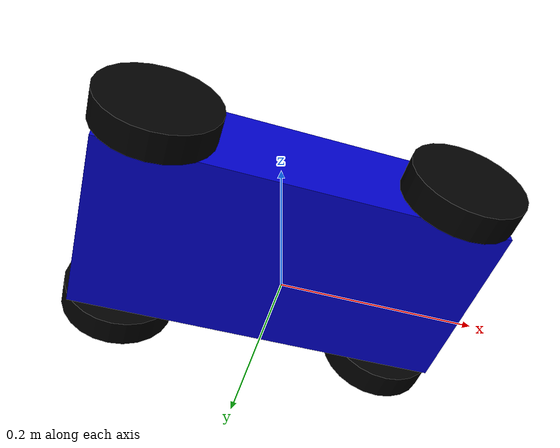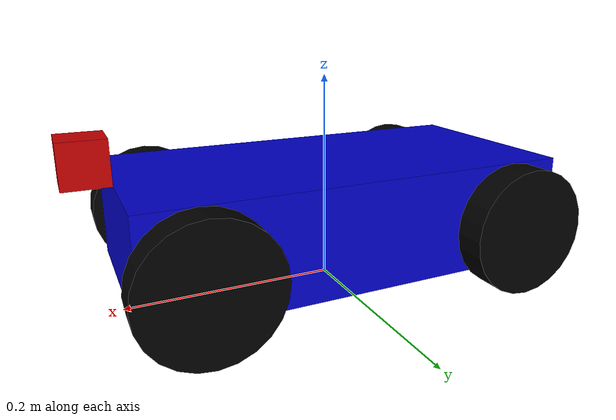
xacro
<?xml version="1.0"?>
<robot xmlns:xacro="http://ros.org/wiki/xacro" name="diff_car">
  <!-- 材质定义 -->
  <material name="blue">
    <color rgba="0 0 0.8 1"/>
  </material>
  <material name="black">
    <color rgba="0 0 0 1"/>
  </material>
  <material name="red">
    <color rgba="0.8 0 0 1"/>
  </material>

  <!-- 车体参数 -->
  <xacro:property name="base_width" value="0.2"/>
  <xacro:property name="base_length" value="0.4"/>
  <xacro:property name="base_height" value="0.1"/>
  <xacro:property name="wheel_radius" value="0.06"/>
  <xacro:property name="wheel_width" value="0.03"/>
  <xacro:property name="ground_clearance" value="0.02"/>

  <!-- 底盘 base_link -->
  <link name="base_link">
    <visual>
      <origin xyz="0 0 ${ground_clearance + base_height/2}" rpy="0 0 0"/>
      <geometry>
        <box size="${base_length} ${base_width} ${base_height}"/>
      </geometry>
      <material name="blue"/>
    </visual>
    <collision>
      <origin xyz="0 0 ${ground_clearance + base_height/2}" rpy="0 0 0"/>
      <geometry>
        <box size="${base_length} ${base_width} ${base_height}"/>
      </geometry>
    </collision>
    <inertial>
      <origin xyz="0 0 ${ground_clearance + base_height/2}"/>
      <mass value="2.0"/>
      <inertia ixx="0.0083" iyy="0.0283" izz="0.033" ixy="0.0" ixz="0.0" iyz="0.0"/>
    </inertial>
  </link>

  <gazebo reference="base_link">
    <selfCollide>false</selfCollide>
    <damping>
      <linear>0.1</linear>
      <angular>0.1</angular>
    </damping>
  </gazebo>

  <!-- 左后轮（驱动轮） -->
  <joint name="left_rear_wheel_joint" type="continuous">
    <parent link="base_link"/>
    <child link="left_rear_wheel"/>
    <origin xyz="${-base_length/2 + 0.05} ${base_width/2 + wheel_width/2} ${wheel_radius}" rpy="0 0 0"/>
    <axis xyz="0 1 0"/>
    <limit effort="30" velocity="10"/>
  </joint>
  <link name="left_rear_wheel">
    <visual>
      <origin xyz="0 0 0" rpy="1.5708 0 0"/>
      <geometry>
        <cylinder radius="${wheel_radius}" length="${wheel_width}"/>
      </geometry>
      <material name="black"/>
    </visual>
    <collision>
      <origin xyz="0 0 0" rpy="1.5708 0 0"/>
      <geometry>
        <cylinder radius="${wheel_radius}" length="${wheel_width}"/>
      </geometry>
    </collision>
    <inertial>
      <mass value="0.2"/>
      <inertia ixx="0.0002175" iyy="0.00036" izz="0.0002175" ixy="0.0" ixz="0.0" iyz="0.0"/>
    </inertial>
  </link>

  <!-- 右后轮（驱动轮） -->
  <joint name="right_rear_wheel_joint" type="continuous">
    <parent link="base_link"/>
    <child link="right_rear_wheel"/>
    <origin xyz="${-base_length/2 + 0.05} ${-base_width/2 - wheel_width/2} ${wheel_radius}" rpy="0 0 0"/>
    <axis xyz="0 1 0"/>
    <limit effort="30" velocity="10"/>
  </joint>
  <link name="right_rear_wheel">
    <visual>
      <origin xyz="0 0 0" rpy="1.5708 0 0"/>
      <geometry>
        <cylinder radius="${wheel_radius}" length="${wheel_width}"/>
      </geometry>
      <material name="black"/>
    </visual>
    <collision>
      <origin xyz="0 0 0" rpy="1.5708 0 0"/>
      <geometry>
        <cylinder radius="${wheel_radius}" length="${wheel_width}"/>
      </geometry>
    </collision>
    <inertial>
      <mass value="0.2"/>
      <inertia ixx="0.0002175" iyy="0.00036" izz="0.0002175" ixy="0.0" ixz="0.0" iyz="0.0"/>
    </inertial>
  </link>

  <!-- 左前轮：随动轮 continuous 自由旋转！！【修复重点】 -->
  <link name="left_front_wheel">
    <visual>
      <origin xyz="0 0 0" rpy="1.5708 0 0"/>
      <geometry>
        <cylinder radius="${wheel_radius}" length="${wheel_width}"/>
      </geometry>
      <material name="black"/>
    </visual>
    <collision>
      <origin xyz="0 0 0" rpy="1.5708 0 0"/>
      <geometry>
        <cylinder radius="${wheel_radius}" length="${wheel_width}"/>
      </geometry>
    </collision>
    <inertial>
      <mass value="0.1"/>
      <inertia ixx="0.00011" iyy="0.00018" izz="0.00011" ixy="0.0" ixz="0.0" iyz="0.0"/>
    </inertial>
  </link>
  <joint name="left_front_wheel_joint" type="continuous">
    <parent link="base_link"/>
    <child link="left_front_wheel"/>
    <origin xyz="${base_length/2 - 0.05} ${base_width/2 + wheel_width/2} ${wheel_radius}" rpy="0 0 0"/>
    <axis xyz="0 1 0"/>
    <limit effort="0" velocity="10"/>
  </joint>

  <!-- 右前轮：随动轮 continuous 自由旋转！！【修复重点】 -->
  <link name="right_front_wheel">
    <visual>
      <origin xyz="0 0 0" rpy="1.5708 0 0"/>
      <geometry>
        <cylinder radius="${wheel_radius}" length="${wheel_width}"/>
      </geometry>
      <material name="black"/>
    </visual>
    <collision>
      <origin xyz="0 0 0" rpy="1.5708 0 0"/>
      <geometry>
        <cylinder radius="${wheel_radius}" length="${wheel_width}"/>
      </geometry>
    </collision>
    <inertial>
      <mass value="0.1"/>
      <inertia ixx="0.00011" iyy="0.00018" izz="0.00011" ixy="0.0" ixz="0.0" iyz="0.0"/>
    </inertial>
  </link>
  <joint name="right_front_wheel_joint" type="continuous">
    <parent link="base_link"/>
    <child link="right_front_wheel"/>
    <origin xyz="${base_length/2 - 0.05} ${-base_width/2 - wheel_width/2} ${wheel_radius}" rpy="0 0 0"/>
    <axis xyz="0 1 0"/>
    <limit effort="0" velocity="10"/>
  </joint>

  <!-- 前相机 -->
  <joint name="front_camera_joint" type="fixed">
    <parent link="base_link"/>
    <child link="front_camera"/>
    <origin xyz="${base_length/2 + 0.02} 0 ${ground_clearance + base_height + 0.02}" rpy="0 0 0"/>
  </joint>
  <link name="front_camera">
    <visual>
      <geometry>
        <box size="0.04 0.04 0.04"/>
      </geometry>
      <material name="red"/>
    </visual>
    <!-- 相机去掉collision，防止撞墙干扰 -->
    <inertial>
      <mass value="0.05"/>
      <inertia ixx="0.00001" iyy="0.00001" izz="0.00001" ixy="0.0" ixz="0.0" iyz="0.0"/>
    </inertial>
  </link>

  <!-- 车轮摩擦接触参数 -->
  <gazebo reference="left_rear_wheel">
    <mu1>0.7</mu1>
    <mu2>0.1</mu2>
    <fdir1>1 0 0</fdir1>
    <kp>800000.0</kp>
    <kd>1.0</kd>
    <minDepth>0.001</minDepth>
  </gazebo>
  <gazebo reference="right_rear_wheel">
    <mu1>0.7</mu1>
    <mu2>0.1</mu2>
    <fdir1>1 0 0</fdir1>
    <kp>800000.0</kp>
    <kd>1.0</kd>
    <minDepth>0.001</minDepth>
  </gazebo>

  <gazebo reference="left_front_wheel">
    <mu1>0.4</mu1>
    <mu2>0.1</mu2>
    <fdir1>1 0 0</fdir1>
    <kp>800000.0</kp>
    <kd>1.0</kd>
    <minDepth>0.001</minDepth>
  </gazebo>
  <gazebo reference="right_front_wheel">
    <mu1>0.4</mu1>
    <mu2>0.1</mu2>
    <fdir1>1 0 0</fdir1>
    <kp>800000.0</kp>
    <kd>1.0</kd>
    <minDepth>0.001</minDepth>
  </gazebo>

  <!-- Gazebo差速驱动插件，轮距参数化，和模型匹配【修复重点】 -->
  <gazebo>
    <plugin name="diff_drive" filename="libgazebo_ros_diff_drive.so">
      <leftJoint>left_rear_wheel_joint</leftJoint>
      <rightJoint>right_rear_wheel_joint</rightJoint>

      <wheelDiameter>${2*wheel_radius}</wheelDiameter>
      <wheelSeparation>${base_width + wheel_width}</wheelSeparation>

      <wheelTorque>30</wheelTorque>
      <wheelAcceleration>10.0</wheelAcceleration>

      <updateRate>100</updateRate>
      <odometryTopic>/odom</odometryTopic>
      <odometryFrame>odom</odometryFrame>
      <robotBaseFrame>base_link</robotBaseFrame>
      <legacyMode>false</legacyMode>
      <alwaysOn>true</alwaysOn>
      <publishWheelJointState>true</publishWheelJointState>
    </plugin>
  </gazebo>

  <!-- Gazebo相机插件 -->
  <gazebo reference="front_camera">
    <sensor type="camera" name="front_camera_sensor">
      <update_rate>30</update_rate>
      <camera>
        <horizontal_fov>1.047</horizontal_fov>
        <image>
          <width>640</width>
          <height>480</height>
          <format>R8G8B8</format>
        </image>
        <clip>
          <near>0.02</near>
          <far>30</far>
        </clip>
      </camera>
      <always_on>true</always_on>
      <plugin name="front_camera_plugin" filename="libgazebo_ros_camera.so">
        <frameName>front_camera</frameName>
        <cameraName>front_camera</cameraName>
        <imageTopicName>/front_camera/image_raw</imageTopicName>
        <cameraInfoTopicName>/front_camera/camera_info</cameraInfoTopicName>
      </plugin>
    </sensor>
  </gazebo>

</robot>
